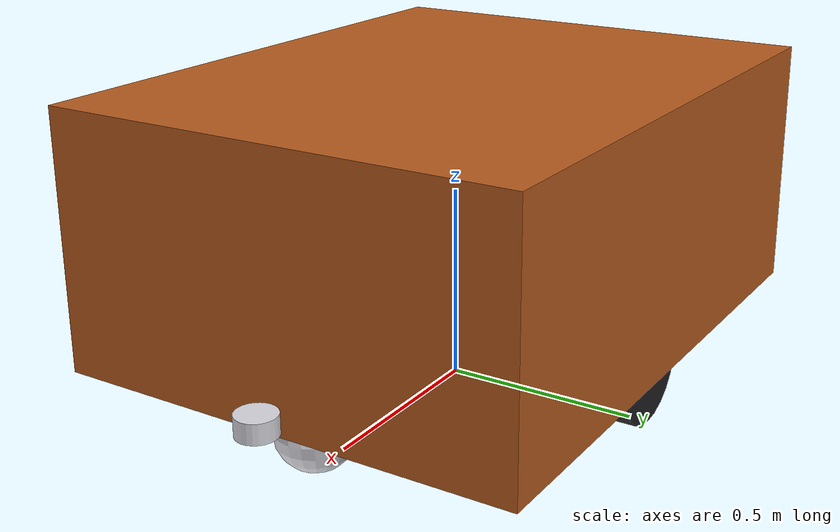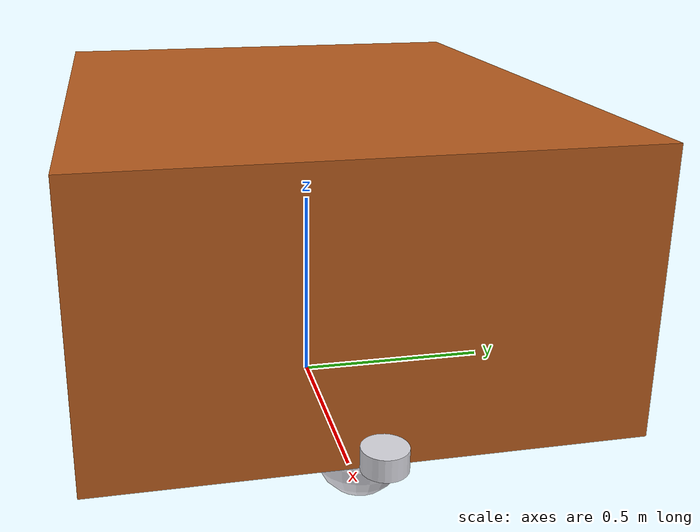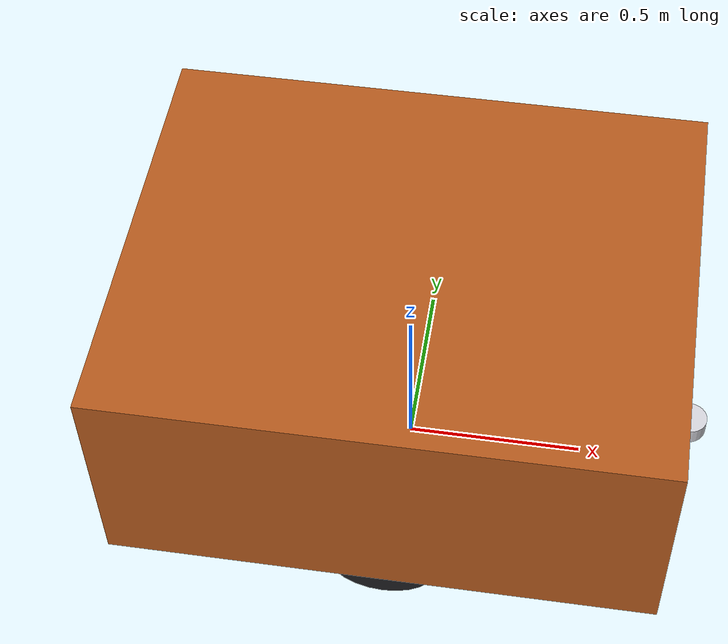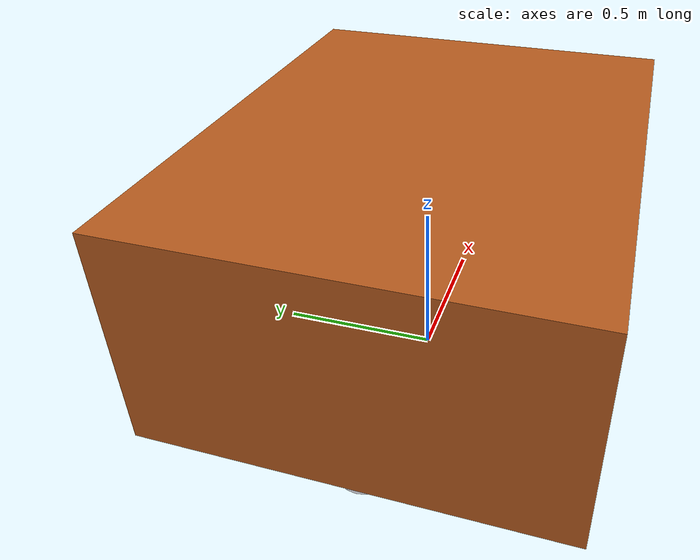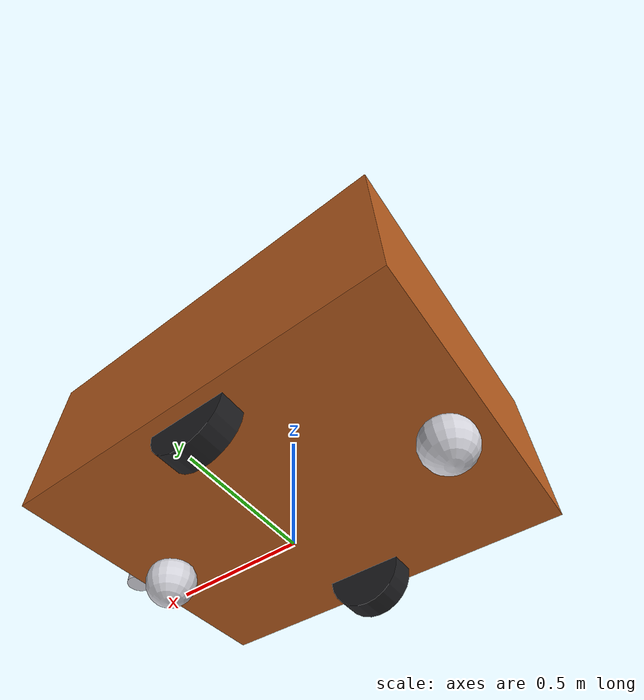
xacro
<?xml version="1.0"?>
<robot xmlns:xacro="http://www.ros.org/wiki/xacro" name="p2bot_hload">

  <!-- ..................... namespace / prefix ..................... -->
  <xacro:arg name="namespace" default=""/>
  <xacro:property name="ns" value="$(arg namespace)"/>
  <xacro:property name="fp" value="${ns + '/' if ns != '' else ''}"/>

  <!-- ..................... 치수 ([표1] H_load) ..................... -->
  <xacro:property name="chassis_l" value="1.5"/>
  <xacro:property name="chassis_w" value="1.2"/>
  <xacro:property name="total_h"   value="0.8"/>    <!-- 지면~상단 전고 -->
  <xacro:property name="chassis_mass" value="300"/>

  <xacro:property name="wheel_radius" value="0.15"/>
  <xacro:property name="wheel_width"  value="0.10"/>
  <xacro:property name="wheel_track"  value="1.00"/>
  <xacro:property name="wheel_mass"   value="8.0"/>

  <!-- 섀시 박스 높이 = 전고 - 지상고(=바퀴 반경). 섀시 범위 z: 0.15 ~ 1.20 -->
  <xacro:property name="chassis_h" value="${total_h - wheel_radius}"/>

  <xacro:property name="caster_radius" value="0.10"/>
  <xacro:property name="caster_x" value="0.60"/>

  <!-- 라이다: 월드 z 목표. 섀시 내부 높이이므로 전방 돌출 마운트 -->
  <xacro:property name="lidar_z"      value="0.20"/>
  <xacro:property name="lidar_radius" value="0.05"/>
  <xacro:property name="lidar_x"      value="${chassis_l/2 + lidar_radius}"/>

  <xacro:arg name="two_d_lidar_enabled" default="true"/>

  <!-- ..................... 재질 (H_load 구분색: 진한 주황) ..................... -->
  <material name="p2_hload_body"> <color rgba="0.72 0.36 0.12 1.0"/></material>
  <material name="p2_wheel">      <color rgba="0.12 0.12 0.13 1.0"/></material>
  <material name="p2_trim">       <color rgba="0.85 0.85 0.88 1.0"/></material>

  <!-- ..................... 관성 매크로 ..................... -->
  <xacro:macro name="box_inertia" params="m x y z">
    <inertial><mass value="${m}"/>
      <inertia ixx="${m*(y*y+z*z)/12}" ixy="0" ixz="0"
               iyy="${m*(x*x+z*z)/12}" iyz="0" izz="${m*(x*x+y*y)/12}"/>
    </inertial>
  </xacro:macro>
  <xacro:macro name="cyl_inertia" params="m r h">
    <inertial><mass value="${m}"/>
      <inertia ixx="${m*(3*r*r+h*h)/12}" ixy="0" ixz="0"
               iyy="${m*(3*r*r+h*h)/12}" iyz="0" izz="${m*r*r/2}"/>
    </inertial>
  </xacro:macro>
  <xacro:macro name="sph_inertia" params="m r">
    <inertial><mass value="${m}"/>
      <inertia ixx="${2*m*r*r/5}" ixy="0" ixz="0"
               iyy="${2*m*r*r/5}" iyz="0" izz="${2*m*r*r/5}"/>
    </inertial>
  </xacro:macro>

  <!-- ..................... GAZEBO 플러그인 ..................... -->
  <gazebo>
    <plugin filename="gz-sim-joint-state-publisher-system"
            name="gz::sim::systems::JointStatePublisher">
      <topic>/${fp}joint_states</topic>
      <joint_name>left_wheel_joint</joint_name>
      <joint_name>right_wheel_joint</joint_name>
    </plugin>
    <plugin filename="gz-sim-diff-drive-system" name="gz::sim::systems::DiffDrive">
      <left_joint>left_wheel_joint</left_joint>
      <right_joint>right_wheel_joint</right_joint>
      <wheel_separation>${wheel_track}</wheel_separation>
      <wheel_radius>${wheel_radius}</wheel_radius>
      <odom_publish_frequency>30</odom_publish_frequency>
      <topic>/${fp}cmd_vel</topic>
      <frame_id>${fp}odom</frame_id>
      <child_frame_id>${fp}base_footprint</child_frame_id>
      <!-- §4.1 시간 모델 v = 1.0 m/s와 정합. 중량체라 가감속·선회는 보수적으로 -->
      <max_linear_velocity>1.0</max_linear_velocity>
      <min_linear_velocity>-0.3</min_linear_velocity>
      <max_angular_velocity>0.5</max_angular_velocity>
      <min_angular_velocity>-0.5</min_angular_velocity>
      <max_linear_acceleration>0.4</max_linear_acceleration>
      <min_linear_acceleration>-0.4</min_linear_acceleration>
      <max_angular_acceleration>0.8</max_angular_acceleration>
      <min_angular_acceleration>-0.8</min_angular_acceleration>
    </plugin>
    <plugin filename="gz-sim-odometry-publisher-system"
            name="gz::sim::systems::OdometryPublisher">
      <odom_frame>${fp}odom</odom_frame>
      <robot_base_frame>${fp}base_footprint</robot_base_frame>
      <odom_topic>/${fp}odom</odom_topic>
      <tf_topic>/${fp}tf</tf_topic>
      <dimensions>2</dimensions>
      <odom_publish_frequency>30</odom_publish_frequency>
    </plugin>
  </gazebo>

  <!-- ..................... BASE ..................... -->
  <link name="${fp}base_footprint"/>
  <link name="${fp}base_link"/>
  <joint name="base_joint" type="fixed">
    <parent link="${fp}base_footprint"/>
    <child link="${fp}base_link"/>
    <origin xyz="0 0 ${chassis_h/2 + wheel_radius}" rpy="0 0 0"/>
  </joint>

  <link name="${fp}chassis_link">
    <collision><geometry><box size="${chassis_l} ${chassis_w} ${chassis_h}"/></geometry></collision>
    <visual>
      <geometry><box size="${chassis_l} ${chassis_w} ${chassis_h}"/></geometry>
      <material name="p2_hload_body"/>
    </visual>
    <xacro:box_inertia m="${chassis_mass}" x="${chassis_l}" y="${chassis_w}" z="${chassis_h}"/>
  </link>
  <joint name="chassis_joint" type="fixed">
    <parent link="${fp}base_link"/><child link="${fp}chassis_link"/>
    <origin xyz="0 0 0" rpy="0 0 0"/>
  </joint>
  <gazebo reference="${fp}chassis_link"><material>Gazebo/Orange</material></gazebo>

  <!-- ..................... 구동륜 ..................... -->
  <xacro:macro name="drive_wheel" params="side reflect">
    <link name="${fp}${side}_wheel">
      <collision>
        <origin xyz="0 0 0" rpy="${pi/2} 0 0"/>
        <geometry><cylinder radius="${wheel_radius}" length="${wheel_width}"/></geometry>
        <surface><friction><ode><mu>5.0</mu><mu2>5.0</mu2></ode></friction></surface>
      </collision>
      <visual>
        <origin xyz="0 0 0" rpy="${pi/2} 0 0"/>
        <geometry><cylinder radius="${wheel_radius}" length="${wheel_width}"/></geometry>
        <material name="p2_wheel"/>
      </visual>
      <xacro:cyl_inertia m="${wheel_mass}" r="${wheel_radius}" h="${wheel_width}"/>
    </link>
    <joint name="${side}_wheel_joint" type="continuous">
      <parent link="${fp}base_link"/><child link="${fp}${side}_wheel"/>
      <origin xyz="0 ${reflect*wheel_track/2} ${-chassis_h/2}" rpy="0 0 0"/>
      <axis xyz="0 1 0"/>
    </joint>
    <gazebo reference="${fp}${side}_wheel">
      <material>Gazebo/DarkGrey</material>
      <mu1>5.0</mu1><mu2>5.0</mu2>
    </gazebo>
  </xacro:macro>
  <xacro:drive_wheel side="left"  reflect="1"/>
  <xacro:drive_wheel side="right" reflect="-1"/>

  <!-- ..................... 캐스터 (전후 각 1, 장축 1.5 m 지지) ..................... -->
  <xacro:macro name="caster" params="side sign">
    <link name="${fp}caster_${side}">
      <collision>
        <geometry><sphere radius="${caster_radius}"/></geometry>
        <surface><friction><ode><mu>0.0</mu><mu2>0.0</mu2></ode></friction></surface>
      </collision>
      <visual><geometry><sphere radius="${caster_radius}"/></geometry><material name="p2_trim"/></visual>
      <xacro:sph_inertia m="2.0" r="${caster_radius}"/>
    </link>
    <joint name="caster_${side}_joint" type="fixed">
      <parent link="${fp}base_link"/><child link="${fp}caster_${side}"/>
      <origin xyz="${sign*caster_x} 0 ${-chassis_h/2 - (wheel_radius-caster_radius)}" rpy="0 0 0"/>
    </joint>
    <gazebo reference="${fp}caster_${side}"><mu1>0.0</mu1><mu2>0.0</mu2></gazebo>
  </xacro:macro>
  <xacro:caster side="front" sign="1"/>
  <xacro:caster side="back"  sign="-1"/>

  <!-- ..................... 2D LIDAR — 저위치 전방 돌출 ..................... -->
  <xacro:if value="$(arg two_d_lidar_enabled)">
    <link name="${fp}two_d_lidar">
      <visual><geometry><cylinder radius="${lidar_radius}" length="0.05"/></geometry>
        <material name="p2_trim"/></visual>
      <xacro:cyl_inertia m="0.1" r="${lidar_radius}" h="0.05"/>
    </link>
    <joint name="two_d_lidar_joint" type="fixed">
      <parent link="${fp}base_link"/><child link="${fp}two_d_lidar"/>
      <origin xyz="${lidar_x} 0 ${lidar_z - (chassis_h/2 + wheel_radius)}" rpy="0 0 0"/>
    </joint>
    <gazebo reference="${fp}two_d_lidar">
      <sensor name="gpu_lidar" type="gpu_lidar">
        <topic>/${fp}scan</topic>
        <update_rate>30</update_rate>
        <gz_frame_id>${fp}two_d_lidar</gz_frame_id>
        <lidar>
          <scan><horizontal>
            <samples>1500</samples><resolution>1</resolution>
            <min_angle>${radians(-94)}</min_angle><max_angle>${radians(94)}</max_angle>
          </horizontal></scan>
          <range><min>0.05</min><max>40.0</max><resolution>0.01</resolution></range>
          <noise><type>gaussian</type><mean>0.0</mean><stddev>0.005</stddev></noise>
        </lidar>
        <always_on>1</always_on><visualize>true</visualize>
      </sensor>
    </gazebo>
  </xacro:if>

  <!-- ..................... IMU ..................... -->
  <link name="${fp}imu_frame"/>
  <joint name="imu_joint" type="fixed">
    <parent link="${fp}base_link"/><child link="${fp}imu_frame"/>
    <origin xyz="0 0 ${chassis_h/2}" rpy="0 0 0"/>
  </joint>
  <gazebo reference="${fp}imu_frame">
    <sensor name="p2bot_imu" type="imu">
      <always_on>1</always_on><update_rate>50</update_rate>
      <gz_frame_id>${fp}imu_frame</gz_frame_id><topic>/${fp}imu</topic>
    </sensor>
  </gazebo>

</robot>
